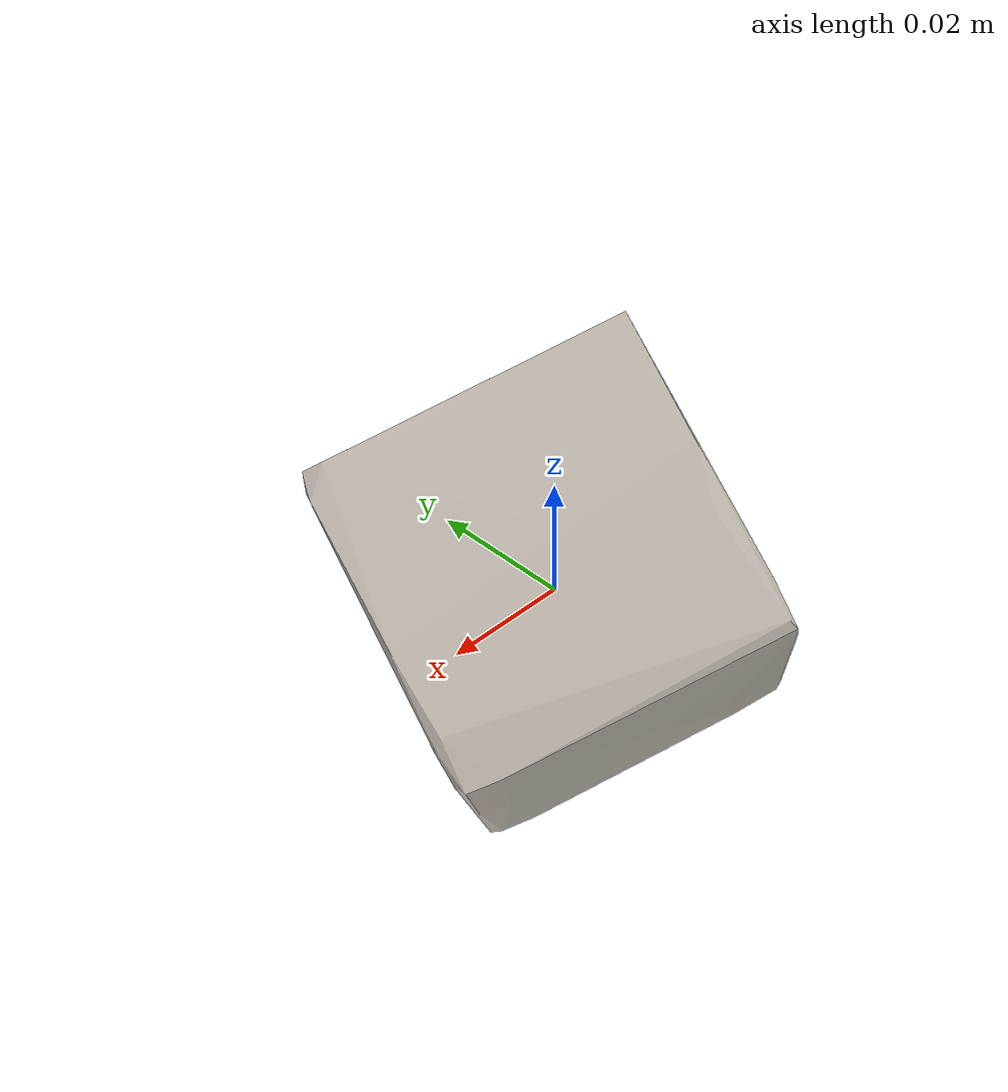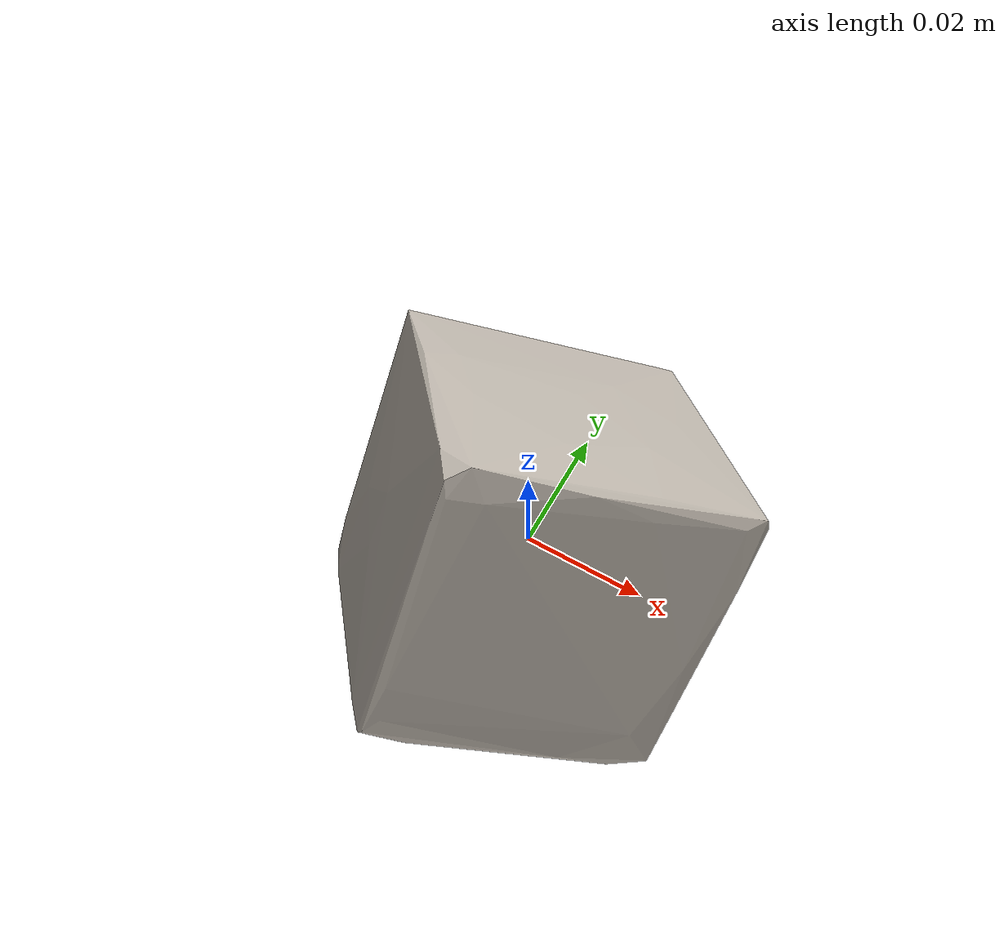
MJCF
<mujoco model="CoffeeBox">
  <asset>
    <mesh file="meshes/CoffeeBox/CoffeeBox_0.stl" name="CoffeeBox_0" scale="1.7 1.7 1.7"/>
    <texture file="../textures/coffeebox_0.png" name="tex-coffeebox" />
    <material name="coffeebox_mat" reflectance="0.7" texture="tex-coffeebox" texuniform="true"/>
  </asset>
  <worldbody>
    <body>
      <body name="collision">
        <geom condim="4" density="100" friction="1.5 0.3 0.1" group="1" mesh="CoffeeBox_0" pos="0 0 0" material="coffeebox_mat" solimp="0.998 0.998 0.001" solref="0.002 1" type="mesh"/>
      </body>
      <body name="visual">
        <geom conaffinity="0" contype="0" group="0" mass="0.0001" mesh="CoffeeBox_0" pos="0 0 0" rgba="0 1 0 1" type="mesh"/>
      </body>
      <site name="bottom_site" pos="0 0 -0.06" rgba="0 0 0 0" size="0.005"/>
      <site name="top_site" pos="0 0 0.04" rgba="0 0 0 0" size="0.005"/>
      <site name="horizontal_radius_site" pos="0.025 0.025 0" rgba="0 0 0 0" size="0.005"/>
    </body>
  </worldbody>
</mujoco>
